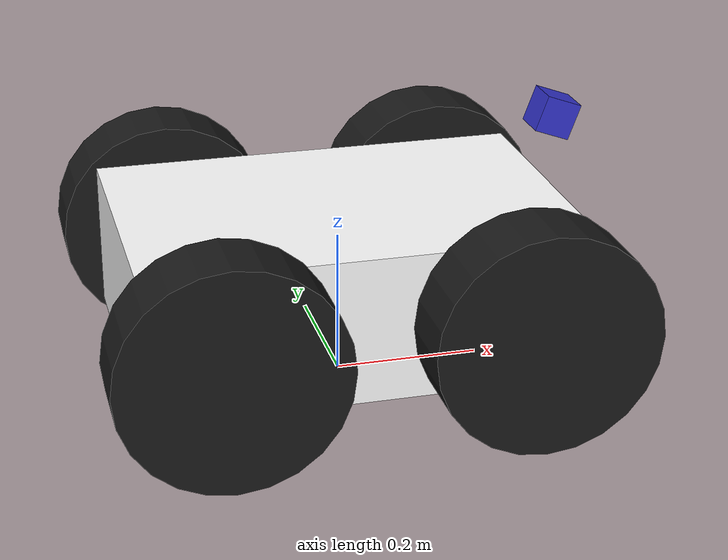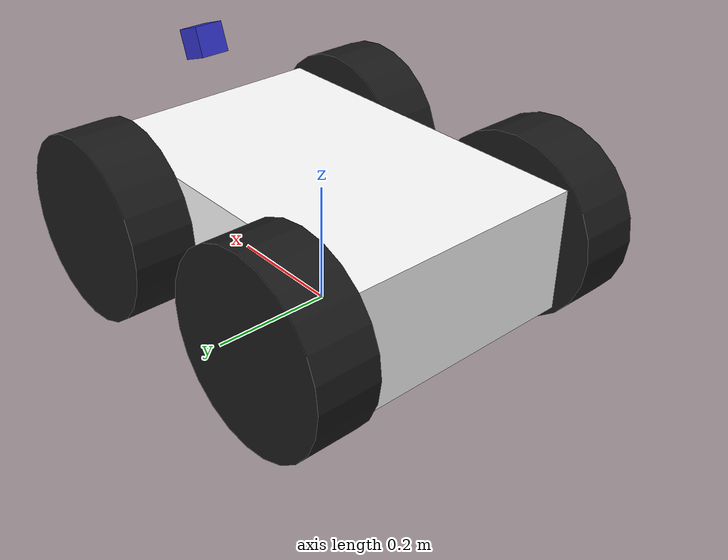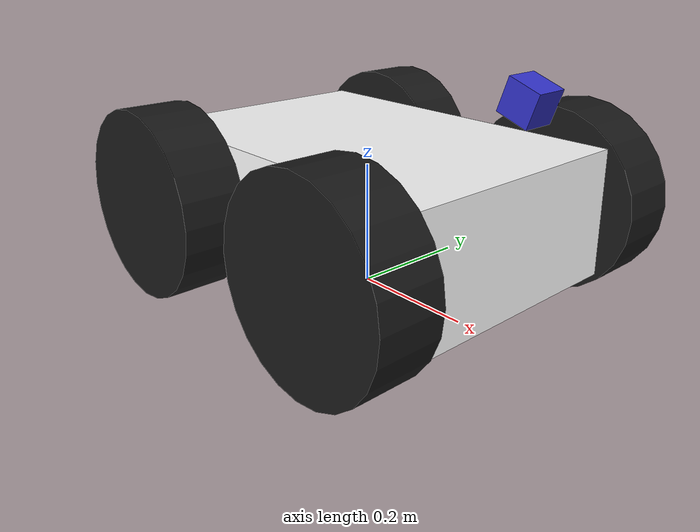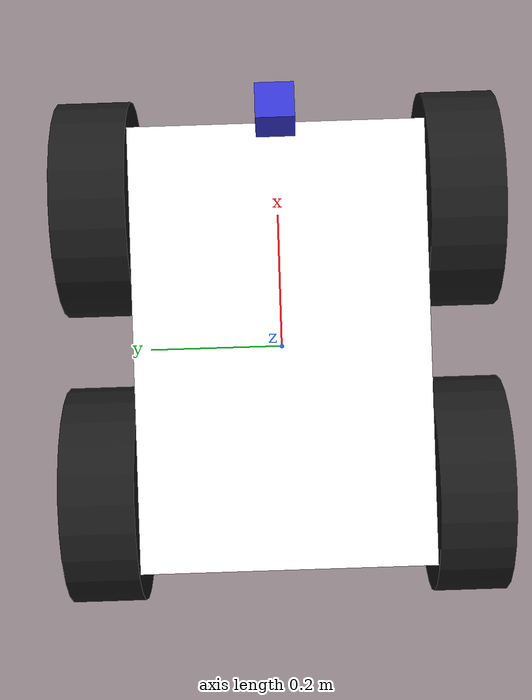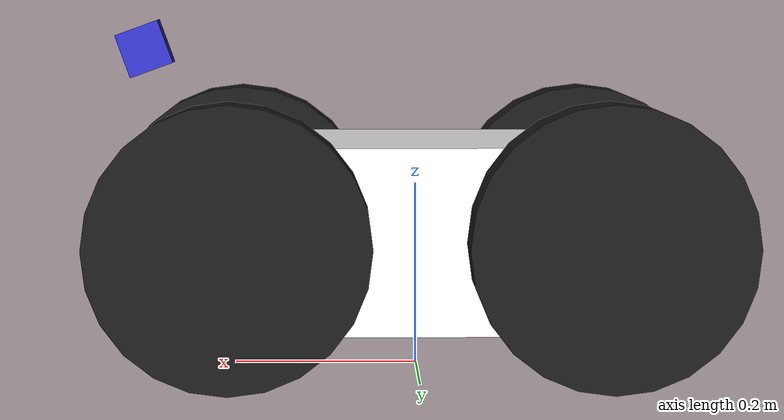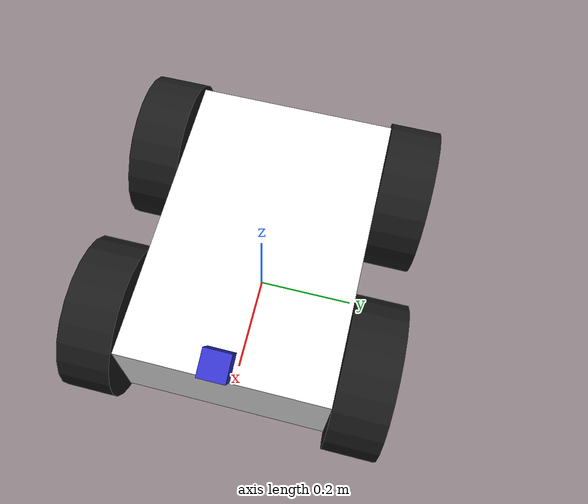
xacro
<?xml version="1.0"?>
<robot name="lunar_rover" xmlns:xacro="http://www.ros.org/wiki/xacro">

  <!-- ==================== PROPERTIES ==================== -->
  <xacro:property name="chassis_length" value="0.6"/>
  <xacro:property name="chassis_width" value="0.4"/>
  <xacro:property name="chassis_height" value="0.2"/>
  <xacro:property name="chassis_mass" value="10.0"/>

  <xacro:property name="wheel_radius" value="0.15"/>
  <xacro:property name="wheel_width" value="0.1"/>
  <xacro:property name="wheel_mass" value="1.0"/>
  <xacro:property name="wheel_separation" value="0.5"/>
  <xacro:property name="wheelbase" value="0.4"/> <!-- Distance between front and rear axles -->

  <!-- ==================== MATERIALS ==================== -->
  <material name="white">
    <color rgba="1 1 1 1"/>
  </material>

  <material name="black">
    <color rgba="0.1 0.1 0.1 1"/>
  </material>

  <material name="blue">
    <color rgba="0.2 0.2 0.8 1"/>
  </material>

  <!-- ==================== BASE FOOTPRINT ==================== -->
  <link name="base_footprint"/>

  <!-- ==================== BASE LINK (Chassis) ==================== -->
  <link name="base_link">
    <visual>
      <origin xyz="0 0 0" rpy="0 0 0"/>
      <geometry>
        <box size="${chassis_length} ${chassis_width} ${chassis_height}"/>
      </geometry>
      <material name="white"/>
    </visual>

    <collision>
      <origin xyz="0 0 0" rpy="0 0 0"/>
      <geometry>
        <box size="${chassis_length} ${chassis_width} ${chassis_height}"/>
      </geometry>
    </collision>

    <inertial>
      <origin xyz="0 0 -0.1" rpy="0 0 0"/>
      <mass value="${chassis_mass}"/>
      <inertia
        ixx="${(chassis_mass/12) * (chassis_width*chassis_width + chassis_height*chassis_height)}"
        ixy="0"
        ixz="0"
        iyy="${(chassis_mass/12) * (chassis_length*chassis_length + chassis_height*chassis_height)}"
        iyz="0"
        izz="${(chassis_mass/12) * (chassis_length*chassis_length + chassis_width*chassis_width)}"/>
    </inertial>
  </link>

  <joint name="base_joint" type="fixed">
    <parent link="base_footprint"/>
    <child link="base_link"/>
    <origin xyz="0 0 ${wheel_radius}" rpy="0 0 0"/>
  </joint>

  <!-- ==================== WHEEL MACRO ==================== -->
  <xacro:macro name="wheel" params="prefix x y">
    <link name="${prefix}_wheel">
      <visual>
        <origin xyz="0 0 0" rpy="1.5707963 0 0"/>
        <geometry>
          <cylinder radius="${wheel_radius}" length="${wheel_width}"/>
        </geometry>
        <material name="black"/>
      </visual>

      <collision>
        <origin xyz="0 0 0" rpy="1.5707963 0 0"/>
        <geometry>
          <cylinder radius="${wheel_radius}" length="${wheel_width}"/>
        </geometry>
      </collision>

      <inertial>
        <origin xyz="0 0 0" rpy="1.5707963 0 0"/>
        <mass value="${wheel_mass}"/>
        <inertia
          ixx="${(wheel_mass/12) * (3*wheel_radius*wheel_radius + wheel_width*wheel_width)}"
          ixy="0"
          ixz="0"
          iyy="${(wheel_mass/12) * (3*wheel_radius*wheel_radius + wheel_width*wheel_width)}"
          iyz="0"
          izz="${(wheel_mass/2) * wheel_radius*wheel_radius}"/>
      </inertial>
    </link>

    <joint name="${prefix}_wheel_joint" type="continuous">
      <parent link="base_link"/>
      <child link="${prefix}_wheel"/>
      <origin xyz="${x} ${y} 0" rpy="0 0 0"/>
      <axis xyz="0 1 0"/>
    </joint>

    <gazebo reference="${prefix}_wheel">
      <material>Gazebo/Black</material>
      <mu1>1.0</mu1>
      <mu2>1.0</mu2>
      <kp>500000.0</kp>
      <kd>10.0</kd>
      <minDepth>0.001</minDepth>
    </gazebo>
  </xacro:macro>

  <!-- ==================== ADD 4 WHEELS ==================== -->
  <!-- Front Left -->
  <xacro:wheel prefix="front_left" x="${wheelbase/2}" y="${wheel_separation/2}"/>
  <!-- Front Right -->
  <xacro:wheel prefix="front_right" x="${wheelbase/2}" y="${-wheel_separation/2}"/>
  <!-- Rear Left -->
  <xacro:wheel prefix="rear_left" x="${-wheelbase/2}" y="${wheel_separation/2}"/>
  <!-- Rear Right -->
  <xacro:wheel prefix="rear_right" x="${-wheelbase/2}" y="${-wheel_separation/2}"/>

  <!-- ==================== DEPTH CAMERA ==================== -->
  <link name="camera_link">
    <visual>
      <origin xyz="0 0 0" rpy="0 0 0"/>
      <geometry>
        <box size="0.05 0.05 0.05"/>
      </geometry>
      <material name="blue"/>
    </visual>

    <collision>
      <origin xyz="0 0 0" rpy="0 0 0"/>
      <geometry>
        <box size="0.05 0.05 0.05"/>
      </geometry>
    </collision>

    <inertial>
      <mass value="0.1"/>
      <inertia ixx="0.0001" ixy="0" ixz="0" iyy="0.0001" iyz="0" izz="0.0001"/>
    </inertial>
  </link>

  <joint name="camera_joint" type="fixed">
    <parent link="base_link"/>
    <child link="camera_link"/>
    <origin xyz="${chassis_length/2} 0 ${chassis_height/2 + 0.1}" rpy="0 0.349 0"/>
  </joint>

  <!-- ==================== IMU ==================== -->
  <link name="imu_link">
    <inertial>
      <mass value="0.01"/>
      <inertia ixx="0.00001" ixy="0" ixz="0" iyy="0.00001" iyz="0" izz="0.00001"/>
    </inertial>
  </link>

  <joint name="imu_joint" type="fixed">
    <parent link="base_link"/>
    <child link="imu_link"/>
    <origin xyz="0 0 ${chassis_height/2}" rpy="0 0 0"/>
  </joint>

  <!-- ==================== GAZEBO PLUGINS ==================== -->

  <!-- 1. SKID STEER DRIVE (ROS 2) -->
  <!-- Using diff_drive plugin on 4 wheels behaves like skid steer if we map pairs -->
  <gazebo>
    <plugin name="diff_drive" filename="libgazebo_ros_diff_drive.so">
      <ros>
        <namespace>/</namespace>
        <remapping>cmd_vel:=/cmd_vel</remapping>
        <remapping>odom:=odom</remapping>
      </ros>
      <update_rate>50.0</update_rate>

      <!-- Number of wheel pairs -->
      <num_wheel_pairs>2</num_wheel_pairs>

      <!-- Front pair -->
      <left_joint>front_left_wheel_joint</left_joint>
      <right_joint>front_right_wheel_joint</right_joint>

      <!-- Rear pair -->
      <left_joint>rear_left_wheel_joint</left_joint>
      <right_joint>rear_right_wheel_joint</right_joint>

      <wheel_separation>${wheel_separation}</wheel_separation>
      <wheel_diameter>${2*wheel_radius}</wheel_diameter>

      <max_wheel_torque>200</max_wheel_torque>
      <max_wheel_acceleration>2.0</max_wheel_acceleration>

      <publish_odom>true</publish_odom>
      <publish_odom_tf>true</publish_odom_tf>
      <publish_wheel_tf>true</publish_wheel_tf>

      <odometry_frame>odom</odometry_frame>
      <robot_base_frame>base_footprint</robot_base_frame>

    </plugin>
  </gazebo>

  <!-- 2. DEPTH CAMERA (ROS 2) -->
  <gazebo reference="camera_link">
    <sensor type="depth" name="depth_camera">
      <always_on>true</always_on>
      <update_rate>10.0</update_rate>
      <camera>
        <horizontal_fov>1.047</horizontal_fov>
        <image>
          <width>640</width>
          <height>480</height>
          <format>R8G8B8</format>
        </image>
        <clip>
          <near>0.5</near>
          <far>50.0</far>
        </clip>
      </camera>

      <plugin name="depth_camera_controller" filename="libgazebo_ros_camera.so">
        <ros>
          <namespace>/camera</namespace>
          <remapping>depth_camera/image_raw:=depth/image_raw</remapping>
          <remapping>depth_camera/camera_info:=depth/camera_info</remapping>
          <remapping>depth_camera/points:=depth/points</remapping>
        </ros>

        <camera_name>depth_camera</camera_name>
        <frame_name>camera_link</frame_name>
        <hack_baseline>0.07</hack_baseline>
        <min_depth>0.5</min_depth>
        <max_depth>50.0</max_depth>
      </plugin>
    </sensor>
  </gazebo>

  <!-- 3. IMU (ROS 2) -->
  <gazebo reference="imu_link">
    <sensor name="imu_sensor" type="imu">
      <always_on>true</always_on>
      <update_rate>100.0</update_rate>
      <plugin filename="libgazebo_ros_imu_sensor.so" name="imu_plugin">
        <ros>
          <namespace>/</namespace>
          <remapping>~/out:=imu</remapping>
        </ros>
        <initial_orientation_as_reference>false</initial_orientation_as_reference>
      </plugin>
    </sensor>
  </gazebo>

  <!-- ==================== GAZEBO MATERIALS ==================== -->
  <gazebo reference="base_link">
    <material>Gazebo/White</material>
  </gazebo>

  <!-- 4. P3D (Ground Truth) -->
  <gazebo>
    <plugin name="p3d_base_controller" filename="libgazebo_ros_p3d.so">
      <ros>
        <remapping>odom:=/ground_truth</remapping>
      </ros>
      <body_name>base_footprint</body_name>
      <update_rate>50.0</update_rate>
      <xyz_offset>0 0 0</xyz_offset>
      <rpy_offset>0 0 0</rpy_offset>
      <gaussian_noise>0.0</gaussian_noise>
    </plugin>
  </gazebo>

</robot>
